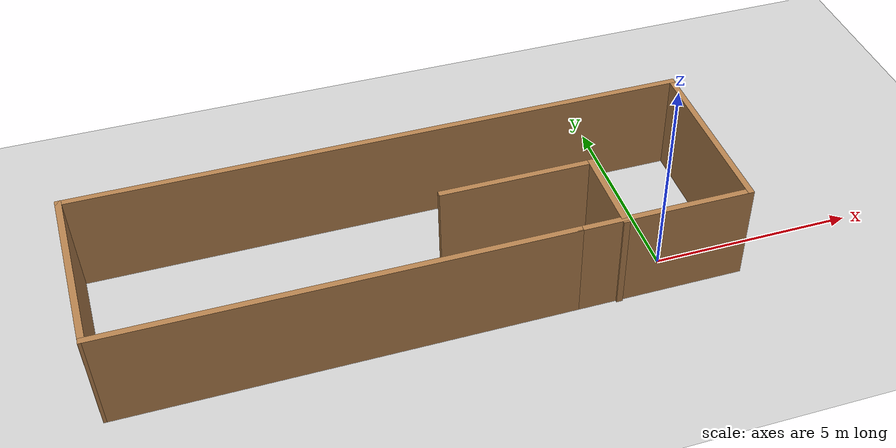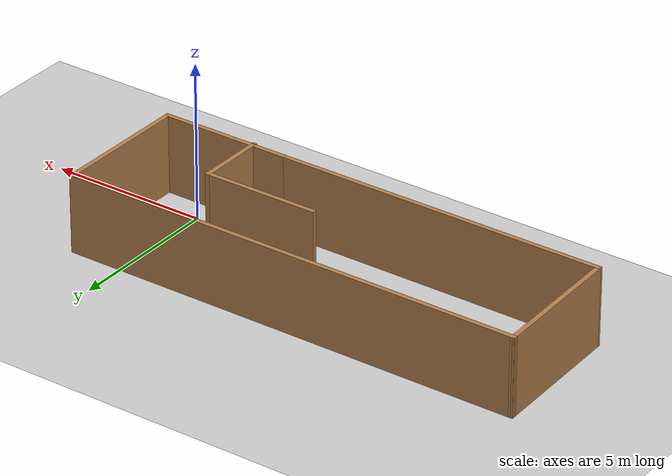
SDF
<sdf version="1.6">
 <world name="default">
  <light name="sun" type="directional">
   <pose>0 0 10 0 -0 0</pose>
   <diffuse>0.8 0.8 0.8 1</diffuse>
   <specular>0.2 0.2 0.2 1</specular>
   <attenuation>
    <range>1000</range>
    <constant>0.9</constant>
    <linear>0.01</linear>
    <quadratic>0.001</quadratic>
   </attenuation>
   <direction>-0.5 0.1 -0.9</direction>
  </light>
  <model name="ground_plane">
   <static>1</static>
   <link name="link">
    <collision name="collision">
     <geometry><plane><normal>0 0 1</normal><size>100 100</size></plane></geometry>
     <surface>
      <contact><collide_bitmask>65535</collide_bitmask></contact>
      <friction><ode><mu>100</mu><mu2>50</mu2></ode></friction>
     </surface>
    </collision>
    <visual name="visual">
     <cast_shadows>0</cast_shadows>
     <geometry><plane><normal>0 0 1</normal><size>100 100</size></plane></geometry>
     <material>
      <script><uri>file://media/materials/scripts/gazebo.material</uri><name>Gazebo/Grey</name></script>
     </material>
    </visual>
   </link>
  </model>
  <gravity>0 0 -9.8</gravity>
  <magnetic_field>6e-06 2.3e-05 -4.2e-05</magnetic_field>
  <atmosphere type="adiabatic"/>
  <physics name="default_physics" default="0" type="ode">
   <max_step_size>0.001</max_step_size>
   <real_time_factor>1</real_time_factor>
   <real_time_update_rate>1000</real_time_update_rate>
  </physics>
  <scene><ambient>0.4 0.4 0.4 1</ambient><background>0.7 0.7 0.7 1</background><shadows>1</shadows></scene>
  <audio><device>default</device></audio>
  <spherical_coordinates>
   <surface_model>EARTH_WGS84</surface_model>
   <latitude_deg>0</latitude_deg>
   <longitude_deg>0</longitude_deg>
   <elevation>0</elevation>
   <heading_deg>0</heading_deg>
  </spherical_coordinates>
  <model name="map_test1">
   <pose>-5.7641 1.32057 0 0 -0 0</pose>
   <link name="Wall_10">
    <collision name="Wall_10_Collision">
     <geometry><box><size>10.75 0.15 2.5</size></box></geometry>
     <pose>0 0 1.25 0 -0 0</pose>
    </collision>
    <visual name="Wall_10_Visual">
     <pose>0 0 1.25 0 -0 0</pose>
     <geometry><box><size>10.75 0.15 2.5</size></box></geometry>
     <material>
      <script><uri>file://media/materials/scripts/gazebo.material</uri><name>Gazebo/Wood</name></script>
      <ambient>1 1 1 1</ambient>
     </material>
     <meta><layer>0</layer></meta>
    </visual>
    <pose>-1.97373 -2.15164 0 0 -0 3.14159</pose>
   </link>
   <link name="Wall_11">
    <collision name="Wall_11_Collision">
     <geometry><box><size>4.50258 0.15 2.5</size></box></geometry>
     <pose>0 0 1.25 0 -0 0</pose>
    </collision>
    <visual name="Wall_11_Visual">
     <pose>0 0 1.25 0 -0 0</pose>
     <geometry><box><size>4.50258 0.15 2.5</size></box></geometry>
     <material>
      <script><uri>file://media/materials/scripts/gazebo.material</uri><name>Gazebo/Wood</name></script>
      <ambient>1 1 1 1</ambient>
     </material>
     <meta><layer>0</layer></meta>
    </visual>
    <pose>-7.34873 0.023359 0 0 -0 1.60526</pose>
   </link>
   <link name="Wall_13">
    <collision name="Wall_13_Collision">
     <geometry><box><size>2.25 0.15 2.5</size></box></geometry>
     <pose>0 0 1.25 0 -0 0</pose>
    </collision>
    <visual name="Wall_13_Visual">
     <pose>0 0 1.25 0 -0 0</pose>
     <geometry><box><size>2.25 0.15 2.5</size></box></geometry>
     <material>
      <script><uri>file://media/materials/scripts/gazebo.material</uri><name>Gazebo/Wood</name></script>
      <ambient>1 1 1 1</ambient>
     </material>
     <meta><layer>0</layer></meta>
    </visual>
    <pose>4.39653 -1.1509 0 0 -0 1.5708</pose>
   </link>
   <link name="Wall_14">
    <collision name="Wall_14_Collision">
     <geometry><box><size>3.75 0.15 2.5</size></box></geometry>
     <pose>0 0 1.25 0 -0 0</pose>
    </collision>
    <visual name="Wall_14_Visual">
     <pose>0 0 1.25 0 -0 0</pose>
     <geometry><box><size>3.75 0.15 2.5</size></box></geometry>
     <material>
      <script><uri>file://media/materials/scripts/gazebo.material</uri><name>Gazebo/Wood</name></script>
      <ambient>1 1 1 1</ambient>
     </material>
     <meta><layer>0</layer></meta>
    </visual>
    <pose>2.59653 -0.100899 0 0 -0 3.14159</pose>
   </link>
   <link name="Wall_7">
    <collision name="Wall_7_Collision">
     <geometry><box><size>15 0.15 2.5</size></box></geometry>
     <pose>0 0 1.25 0 -0 0</pose>
    </collision>
    <visual name="Wall_7_Visual">
     <pose>0 0 1.25 0 -0 0</pose>
     <geometry><box><size>15 0.15 2.5</size></box></geometry>
     <material>
      <script><uri>file://media/materials/scripts/gazebo.material</uri><name>Gazebo/Wood</name></script>
      <ambient>1 1 1 1</ambient>
     </material>
     <meta><layer>0</layer></meta>
    </visual>
    <pose>0.00127 2.19836 0 0 -0 0</pose>
   </link>
   <link name="Wall_8">
    <collision name="Wall_8_Collision">
     <geometry><box><size>4.5 0.15 2.5</size></box></geometry>
     <pose>0 0 1.25 0 -0 0</pose>
    </collision>
    <visual name="Wall_8_Visual">
     <pose>0 0 1.25 0 -0 0</pose>
     <geometry><box><size>4.5 0.15 2.5</size></box></geometry>
     <material>
      <script><uri>file://media/materials/scripts/gazebo.material</uri><name>Gazebo/Wood</name></script>
      <ambient>1 1 1 1</ambient>
     </material>
     <meta><layer>0</layer></meta>
    </visual>
    <pose>7.42627 0.023359 0 0 -0 -1.5708</pose>
   </link>
   <link name="Wall_9">
    <collision name="Wall_9_Collision">
     <geometry><box><size>4.25 0.15 2.5</size></box></geometry>
     <pose>0 0 1.25 0 -0 0</pose>
    </collision>
    <visual name="Wall_9_Visual">
     <pose>0 0 1.25 0 -0 0</pose>
     <geometry><box><size>4.25 0.15 2.5</size></box></geometry>
     <material>
      <script><uri>file://media/materials/scripts/gazebo.material</uri><name>Gazebo/Wood</name></script>
      <ambient>1 1 1 1</ambient>
     </material>
     <meta><layer>0</layer></meta>
    </visual>
    <pose>5.37627 -2.15164 0 0 -0 3.14159</pose>
   </link>
   <static>1</static>
  </model>
 </world>
</sdf>
